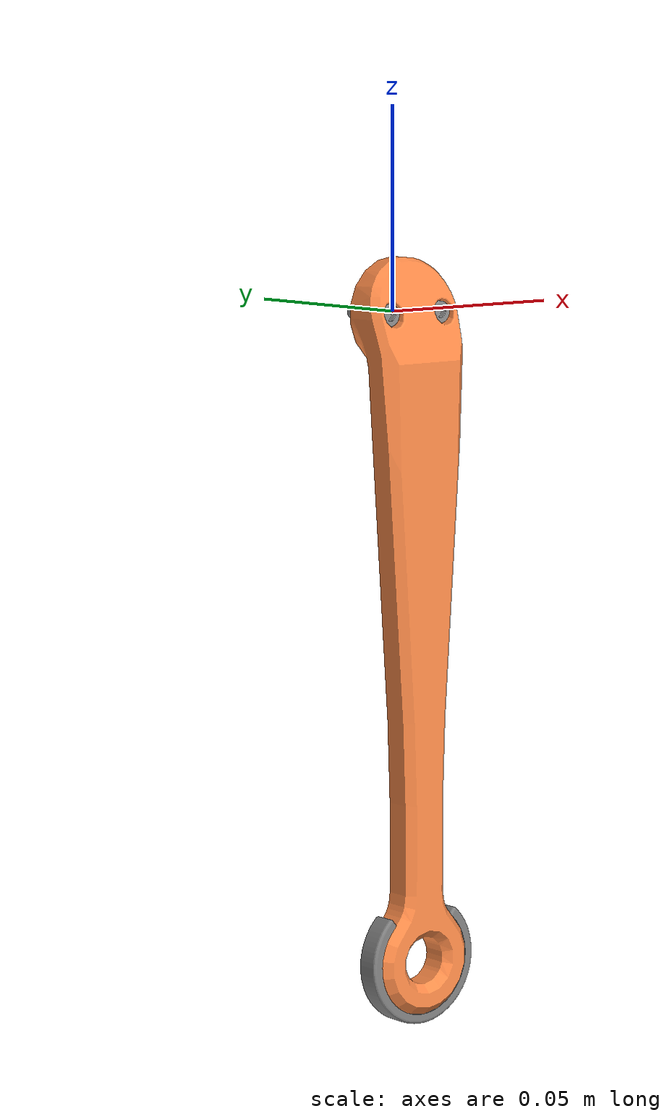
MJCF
<mujoco model="solo_lower_leg_v2_right_side">
  <default>
    <default class="visual">
      <geom group="2" type="mesh" contype="0" conaffinity="0"/>
    </default>
    <default class="collision">
      <geom group="3" type="mesh"/>
    </default>
  </default>
  <asset>
    <material name="material_0" specular="1.0" shininess="0.0" rgba="0.501961 0.501961 0.501961 1.0"/>
    <material name="material_1" specular="1.0" shininess="0.0" rgba="1.000000 0.549020 0.286275 1.0"/>
    <material name="material_2" specular="1.0" shininess="0.0" rgba="0.549020 0.549020 0.549020 1.0"/>
    <mesh file="solo_lower_leg_v2_right_side_0.obj"/>
    <mesh file="solo_lower_leg_v2_right_side_1.obj"/>
    <mesh file="solo_lower_leg_v2_right_side_2.obj"/>
    <mesh file="solo_lower_leg_v2_right_side_collision_0.obj"/>
    <mesh file="solo_lower_leg_v2_right_side_collision_1.obj"/>
    <mesh file="solo_lower_leg_v2_right_side_collision_2.obj"/>
    <mesh file="solo_lower_leg_v2_right_side_collision_3.obj"/>
    <mesh file="solo_lower_leg_v2_right_side_collision_4.obj"/>
    <mesh file="solo_lower_leg_v2_right_side_collision_5.obj"/>
    <mesh file="solo_lower_leg_v2_right_side_collision_6.obj"/>
    <mesh file="solo_lower_leg_v2_right_side_collision_7.obj"/>
  </asset>
  <worldbody>
    <body name="solo_lower_leg_v2_right_side">
      <geom mesh="solo_lower_leg_v2_right_side_0" material="material_2" class="visual"/>
      <geom mesh="solo_lower_leg_v2_right_side_1" material="material_1" class="visual"/>
      <geom mesh="solo_lower_leg_v2_right_side_2" material="material_0" class="visual"/>
      <geom mesh="solo_lower_leg_v2_right_side_collision_0" class="collision"/>
      <geom mesh="solo_lower_leg_v2_right_side_collision_1" class="collision"/>
      <geom mesh="solo_lower_leg_v2_right_side_collision_2" class="collision"/>
      <geom mesh="solo_lower_leg_v2_right_side_collision_3" class="collision"/>
      <geom mesh="solo_lower_leg_v2_right_side_collision_4" class="collision"/>
      <geom mesh="solo_lower_leg_v2_right_side_collision_5" class="collision"/>
      <geom mesh="solo_lower_leg_v2_right_side_collision_6" class="collision"/>
      <geom mesh="solo_lower_leg_v2_right_side_collision_7" class="collision"/>
    </body>
  </worldbody>
</mujoco>
